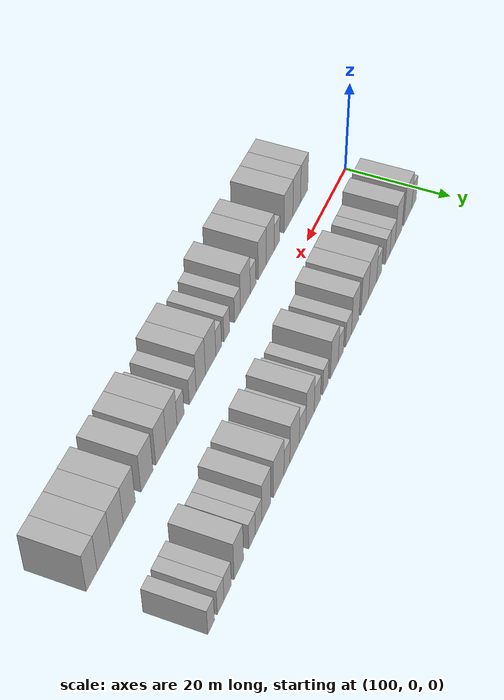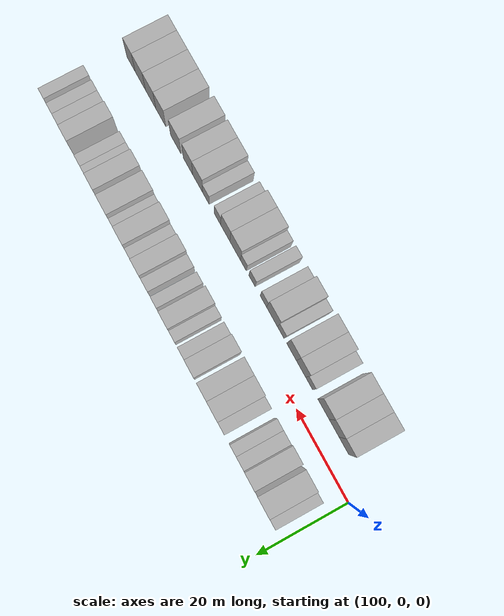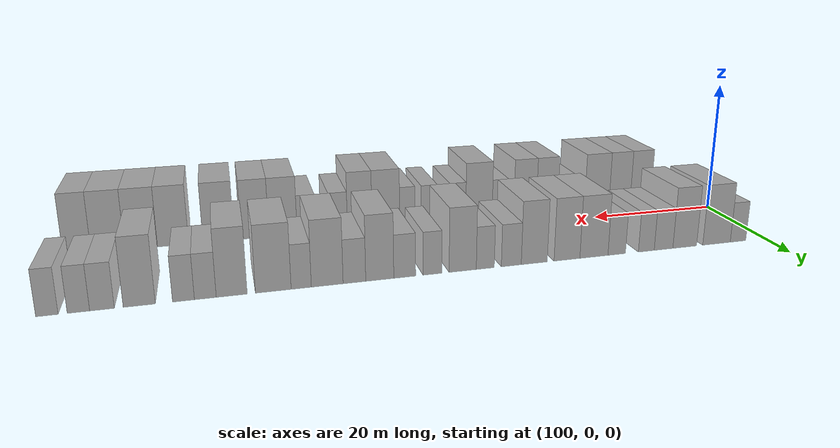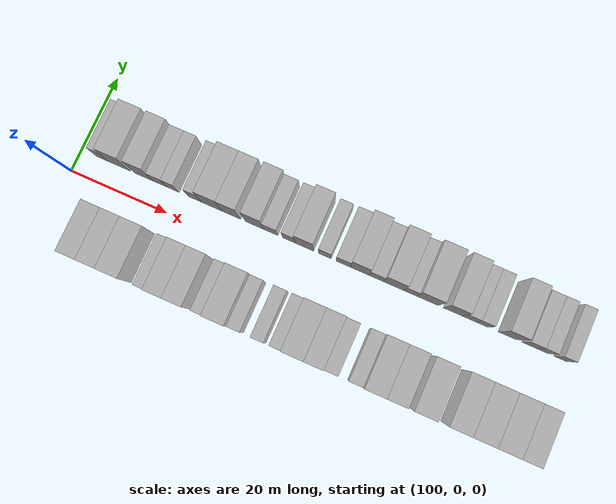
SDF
<sdf version="1.6">
 <world name="default">
  <model name="building_23">
   <static>1</static>
   <pose>104.5063 9.5000 0 0.000000 0.000000 1.570796</pose>
   <link name="link">
    <pose>0 0 3.00 0 0 0</pose>
    <collision name="collision"><geometry><box><size>10.0000 2.5752 6.0000</size></box></geometry></collision>
    <visual name="visual">
     <cast_shadows>0</cast_shadows>
     <geometry><box><size>10.0000 2.5752 6.0000</size></box></geometry>
     <material>
      <script>
       <uri>model://HANNAS_wall/materials/scripts</uri>
       <uri>model://HANNAS_wall/materials/textures</uri>
       <name>vrc/HANNAS_wall</name>
      </script>
     </material>
    </visual>
   </link>
  </model>
  <model name="building_24">
   <static>1</static>
   <pose>108.0437 9.5000 0 0.000000 0.000000 1.570796</pose>
   <link name="link">
    <pose>0 0 4.50 0 0 0</pose>
    <collision name="collision"><geometry><box><size>10.0000 4.4995 9.0000</size></box></geometry></collision>
    <visual name="visual">
     <cast_shadows>0</cast_shadows>
     <geometry><box><size>10.0000 4.4995 9.0000</size></box></geometry>
     <material>
      <script>
       <uri>model://HANNAS_wall/materials/scripts</uri>
       <uri>model://HANNAS_wall/materials/textures</uri>
       <name>vrc/HANNAS_wall</name>
      </script>
     </material>
    </visual>
   </link>
  </model>
  <model name="building_25">
   <static>1</static>
   <pose>113.1949 9.5000 0 0.000000 0.000000 1.570796</pose>
   <link name="link">
    <pose>0 0 4.50 0 0 0</pose>
    <collision name="collision"><geometry><box><size>10.0000 3.8029 9.0000</size></box></geometry></collision>
    <visual name="visual">
     <cast_shadows>0</cast_shadows>
     <geometry><box><size>10.0000 3.8029 9.0000</size></box></geometry>
     <material>
      <script>
       <uri>model://HANNAS_wall/materials/scripts</uri>
       <uri>model://HANNAS_wall/materials/textures</uri>
       <name>vrc/HANNAS_wall</name>
      </script>
     </material>
    </visual>
   </link>
  </model>
  <model name="building_26">
   <static>1</static>
   <pose>116.5691 9.5000 0 0.000000 0.000000 1.570796</pose>
   <link name="link">
    <pose>0 0 3.00 0 0 0</pose>
    <collision name="collision"><geometry><box><size>10.0000 2.9457 6.0000</size></box></geometry></collision>
    <visual name="visual">
     <cast_shadows>0</cast_shadows>
     <geometry><box><size>10.0000 2.9457 6.0000</size></box></geometry>
     <material>
      <script>
       <uri>model://HANNAS_wall/materials/scripts</uri>
       <uri>model://HANNAS_wall/materials/textures</uri>
       <name>vrc/HANNAS_wall</name>
      </script>
     </material>
    </visual>
   </link>
  </model>
  <model name="building_27">
   <static>1</static>
   <pose>119.2796 9.5000 0 0.000000 0.000000 1.570796</pose>
   <link name="link">
    <pose>0 0 3.00 0 0 0</pose>
    <collision name="collision"><geometry><box><size>10.0000 2.4752 6.0000</size></box></geometry></collision>
    <visual name="visual">
     <cast_shadows>0</cast_shadows>
     <geometry><box><size>10.0000 2.4752 6.0000</size></box></geometry>
     <material>
      <script>
       <uri>model://HANNAS_wall/materials/scripts</uri>
       <uri>model://HANNAS_wall/materials/textures</uri>
       <name>vrc/HANNAS_wall</name>
      </script>
     </material>
    </visual>
   </link>
  </model>
  <model name="building_28">
   <static>1</static>
   <pose>123.8556 9.5000 0 0.000000 0.000000 1.570796</pose>
   <link name="link">
    <pose>0 0 3.00 0 0 0</pose>
    <collision name="collision"><geometry><box><size>10.0000 2.6768 6.0000</size></box></geometry></collision>
    <visual name="visual">
     <cast_shadows>0</cast_shadows>
     <geometry><box><size>10.0000 2.6768 6.0000</size></box></geometry>
     <material>
      <script>
       <uri>model://HANNAS_wall/materials/scripts</uri>
       <uri>model://HANNAS_wall/materials/textures</uri>
       <name>vrc/HANNAS_wall</name>
      </script>
     </material>
    </visual>
   </link>
  </model>
  <model name="building_29">
   <static>1</static>
   <pose>127.3138 9.5000 0 0.000000 0.000000 1.570796</pose>
   <link name="link">
    <pose>0 0 4.50 0 0 0</pose>
    <collision name="collision"><geometry><box><size>10.0000 4.2395 9.0000</size></box></geometry></collision>
    <visual name="visual">
     <cast_shadows>0</cast_shadows>
     <geometry><box><size>10.0000 4.2395 9.0000</size></box></geometry>
     <material>
      <script>
       <uri>model://HANNAS_wall/materials/scripts</uri>
       <uri>model://HANNAS_wall/materials/textures</uri>
       <name>vrc/HANNAS_wall</name>
      </script>
     </material>
    </visual>
   </link>
  </model>
  <model name="building_30">
   <static>1</static>
   <pose>131.3502 9.5000 0 0.000000 0.000000 1.570796</pose>
   <link name="link">
    <pose>0 0 4.50 0 0 0</pose>
    <collision name="collision"><geometry><box><size>10.0000 3.8334 9.0000</size></box></geometry></collision>
    <visual name="visual">
     <cast_shadows>0</cast_shadows>
     <geometry><box><size>10.0000 3.8334 9.0000</size></box></geometry>
     <material>
      <script>
       <uri>model://HANNAS_wall/materials/scripts</uri>
       <uri>model://HANNAS_wall/materials/textures</uri>
       <name>vrc/HANNAS_wall</name>
      </script>
     </material>
    </visual>
   </link>
  </model>
  <model name="building_31">
   <static>1</static>
   <pose>136.1513 9.5000 0 0.000000 0.000000 1.570796</pose>
   <link name="link">
    <pose>0 0 4.50 0 0 0</pose>
    <collision name="collision"><geometry><box><size>10.0000 3.7687 9.0000</size></box></geometry></collision>
    <visual name="visual">
     <cast_shadows>0</cast_shadows>
     <geometry><box><size>10.0000 3.7687 9.0000</size></box></geometry>
     <material>
      <script>
       <uri>model://HANNAS_wall/materials/scripts</uri>
       <uri>model://HANNAS_wall/materials/textures</uri>
       <name>vrc/HANNAS_wall</name>
      </script>
     </material>
    </visual>
   </link>
  </model>
  <model name="building_32">
   <static>1</static>
   <pose>139.4616 9.5000 0 0.000000 0.000000 1.570796</pose>
   <link name="link">
    <pose>0 0 3.00 0 0 0</pose>
    <collision name="collision"><geometry><box><size>10.0000 2.8519 6.0000</size></box></geometry></collision>
    <visual name="visual">
     <cast_shadows>0</cast_shadows>
     <geometry><box><size>10.0000 2.8519 6.0000</size></box></geometry>
     <material>
      <script>
       <uri>model://HANNAS_wall/materials/scripts</uri>
       <uri>model://HANNAS_wall/materials/textures</uri>
       <name>vrc/HANNAS_wall</name>
      </script>
     </material>
    </visual>
   </link>
  </model>
  <model name="building_33">
   <static>1</static>
   <pose>143.1523 9.5000 0 0.000000 0.000000 1.570796</pose>
   <link name="link">
    <pose>0 0 3.00 0 0 0</pose>
    <collision name="collision"><geometry><box><size>10.0000 2.5296 6.0000</size></box></geometry></collision>
    <visual name="visual">
     <cast_shadows>0</cast_shadows>
     <geometry><box><size>10.0000 2.5296 6.0000</size></box></geometry>
     <material>
      <script>
       <uri>model://HANNAS_wall/materials/scripts</uri>
       <uri>model://HANNAS_wall/materials/textures</uri>
       <name>vrc/HANNAS_wall</name>
      </script>
     </material>
    </visual>
   </link>
  </model>
  <model name="building_34">
   <static>1</static>
   <pose>146.3034 9.5000 0 0.000000 0.000000 1.570796</pose>
   <link name="link">
    <pose>0 0 4.50 0 0 0</pose>
    <collision name="collision"><geometry><box><size>10.0000 3.7726 9.0000</size></box></geometry></collision>
    <visual name="visual">
     <cast_shadows>0</cast_shadows>
     <geometry><box><size>10.0000 3.7726 9.0000</size></box></geometry>
     <material>
      <script>
       <uri>model://HANNAS_wall/materials/scripts</uri>
       <uri>model://HANNAS_wall/materials/textures</uri>
       <name>vrc/HANNAS_wall</name>
      </script>
     </material>
    </visual>
   </link>
  </model>
  <model name="building_35">
   <static>1</static>
   <pose>150.4676 9.5000 0 0.000000 0.000000 1.570796</pose>
   <link name="link">
    <pose>0 0 3.00 0 0 0</pose>
    <collision name="collision"><geometry><box><size>10.0000 2.5558 6.0000</size></box></geometry></collision>
    <visual name="visual">
     <cast_shadows>0</cast_shadows>
     <geometry><box><size>10.0000 2.5558 6.0000</size></box></geometry>
     <material>
      <script>
       <uri>model://HANNAS_wall/materials/scripts</uri>
       <uri>model://HANNAS_wall/materials/textures</uri>
       <name>vrc/HANNAS_wall</name>
      </script>
     </material>
    </visual>
   </link>
  </model>
  <model name="building_36">
   <static>1</static>
   <pose>154.2089 9.5000 0 0.000000 0.000000 1.570796</pose>
   <link name="link">
    <pose>0 0 3.00 0 0 0</pose>
    <collision name="collision"><geometry><box><size>10.0000 2.9268 6.0000</size></box></geometry></collision>
    <visual name="visual">
     <cast_shadows>0</cast_shadows>
     <geometry><box><size>10.0000 2.9268 6.0000</size></box></geometry>
     <material>
      <script>
       <uri>model://HANNAS_wall/materials/scripts</uri>
       <uri>model://HANNAS_wall/materials/textures</uri>
       <name>vrc/HANNAS_wall</name>
      </script>
     </material>
    </visual>
   </link>
  </model>
  <model name="building_37">
   <static>1</static>
   <pose>157.5203 9.5000 0 0.000000 0.000000 1.570796</pose>
   <link name="link">
    <pose>0 0 4.50 0 0 0</pose>
    <collision name="collision"><geometry><box><size>10.0000 3.6960 9.0000</size></box></geometry></collision>
    <visual name="visual">
     <cast_shadows>0</cast_shadows>
     <geometry><box><size>10.0000 3.6960 9.0000</size></box></geometry>
     <material>
      <script>
       <uri>model://HANNAS_wall/materials/scripts</uri>
       <uri>model://HANNAS_wall/materials/textures</uri>
       <name>vrc/HANNAS_wall</name>
      </script>
     </material>
    </visual>
   </link>
  </model>
  <model name="building_38">
   <static>1</static>
   <pose>160.8346 9.5000 0 0.000000 0.000000 1.570796</pose>
   <link name="link">
    <pose>0 0 3.00 0 0 0</pose>
    <collision name="collision"><geometry><box><size>10.0000 2.9327 6.0000</size></box></geometry></collision>
    <visual name="visual">
     <cast_shadows>0</cast_shadows>
     <geometry><box><size>10.0000 2.9327 6.0000</size></box></geometry>
     <material>
      <script>
       <uri>model://HANNAS_wall/materials/scripts</uri>
       <uri>model://HANNAS_wall/materials/textures</uri>
       <name>vrc/HANNAS_wall</name>
      </script>
     </material>
    </visual>
   </link>
  </model>
  <model name="building_39">
   <static>1</static>
   <pose>164.3289 9.5000 0 0.000000 0.000000 1.570796</pose>
   <link name="link">
    <pose>0 0 4.50 0 0 0</pose>
    <collision name="collision"><geometry><box><size>10.0000 4.0558 9.0000</size></box></geometry></collision>
    <visual name="visual">
     <cast_shadows>0</cast_shadows>
     <geometry><box><size>10.0000 4.0558 9.0000</size></box></geometry>
     <material>
      <script>
       <uri>model://HANNAS_wall/materials/scripts</uri>
       <uri>model://HANNAS_wall/materials/textures</uri>
       <name>vrc/HANNAS_wall</name>
      </script>
     </material>
    </visual>
   </link>
  </model>
  <model name="building_40">
   <static>1</static>
   <pose>167.6247 9.5000 0 0.000000 0.000000 1.570796</pose>
   <link name="link">
    <pose>0 0 3.00 0 0 0</pose>
    <collision name="collision"><geometry><box><size>10.0000 2.5358 6.0000</size></box></geometry></collision>
    <visual name="visual">
     <cast_shadows>0</cast_shadows>
     <geometry><box><size>10.0000 2.5358 6.0000</size></box></geometry>
     <material>
      <script>
       <uri>model://HANNAS_wall/materials/scripts</uri>
       <uri>model://HANNAS_wall/materials/textures</uri>
       <name>vrc/HANNAS_wall</name>
      </script>
     </material>
    </visual>
   </link>
  </model>
  <model name="building_41">
   <static>1</static>
   <pose>171.1005 9.5000 0 0.000000 0.000000 1.570796</pose>
   <link name="link">
    <pose>0 0 4.50 0 0 0</pose>
    <collision name="collision"><geometry><box><size>10.0000 4.4159 9.0000</size></box></geometry></collision>
    <visual name="visual">
     <cast_shadows>0</cast_shadows>
     <geometry><box><size>10.0000 4.4159 9.0000</size></box></geometry>
     <material>
      <script>
       <uri>model://HANNAS_wall/materials/scripts</uri>
       <uri>model://HANNAS_wall/materials/textures</uri>
       <name>vrc/HANNAS_wall</name>
      </script>
     </material>
    </visual>
   </link>
  </model>
  <model name="building_42">
   <static>1</static>
   <pose>176.1763 9.5000 0 0.000000 0.000000 1.570796</pose>
   <link name="link">
    <pose>0 0 4.50 0 0 0</pose>
    <collision name="collision"><geometry><box><size>10.0000 3.7356 9.0000</size></box></geometry></collision>
    <visual name="visual">
     <cast_shadows>0</cast_shadows>
     <geometry><box><size>10.0000 3.7356 9.0000</size></box></geometry>
     <material>
      <script>
       <uri>model://HANNAS_wall/materials/scripts</uri>
       <uri>model://HANNAS_wall/materials/textures</uri>
       <name>vrc/HANNAS_wall</name>
      </script>
     </material>
    </visual>
   </link>
  </model>
  <model name="building_43">
   <static>1</static>
   <pose>179.3407 9.5000 0 0.000000 0.000000 1.570796</pose>
   <link name="link">
    <pose>0 0 3.00 0 0 0</pose>
    <collision name="collision"><geometry><box><size>10.0000 2.5933 6.0000</size></box></geometry></collision>
    <visual name="visual">
     <cast_shadows>0</cast_shadows>
     <geometry><box><size>10.0000 2.5933 6.0000</size></box></geometry>
     <material>
      <script>
       <uri>model://HANNAS_wall/materials/scripts</uri>
       <uri>model://HANNAS_wall/materials/textures</uri>
       <name>vrc/HANNAS_wall</name>
      </script>
     </material>
    </visual>
   </link>
  </model>
  <model name="building_44">
   <static>1</static>
   <pose>181.9197 9.5000 0 0.000000 0.000000 1.570796</pose>
   <link name="link">
    <pose>0 0 3.00 0 0 0</pose>
    <collision name="collision"><geometry><box><size>10.0000 2.5648 6.0000</size></box></geometry></collision>
    <visual name="visual">
     <cast_shadows>0</cast_shadows>
     <geometry><box><size>10.0000 2.5648 6.0000</size></box></geometry>
     <material>
      <script>
       <uri>model://HANNAS_wall/materials/scripts</uri>
       <uri>model://HANNAS_wall/materials/textures</uri>
       <name>vrc/HANNAS_wall</name>
      </script>
     </material>
    </visual>
   </link>
  </model>
  <model name="building_45">
   <static>1</static>
   <pose>187.0384 9.5000 0 0.000000 0.000000 1.570796</pose>
   <link name="link">
    <pose>0 0 4.50 0 0 0</pose>
    <collision name="collision"><geometry><box><size>10.0000 3.6726 9.0000</size></box></geometry></collision>
    <visual name="visual">
     <cast_shadows>0</cast_shadows>
     <geometry><box><size>10.0000 3.6726 9.0000</size></box></geometry>
     <material>
      <script>
       <uri>model://HANNAS_wall/materials/scripts</uri>
       <uri>model://HANNAS_wall/materials/textures</uri>
       <name>vrc/HANNAS_wall</name>
      </script>
     </material>
    </visual>
   </link>
  </model>
  <model name="building_46">
   <static>1</static>
   <pose>191.2557 9.5000 0 0.000000 0.000000 1.570796</pose>
   <link name="link">
    <pose>0 0 3.00 0 0 0</pose>
    <collision name="collision"><geometry><box><size>10.0000 2.7620 6.0000</size></box></geometry></collision>
    <visual name="visual">
     <cast_shadows>0</cast_shadows>
     <geometry><box><size>10.0000 2.7620 6.0000</size></box></geometry>
     <material>
      <script>
       <uri>model://HANNAS_wall/materials/scripts</uri>
       <uri>model://HANNAS_wall/materials/textures</uri>
       <name>vrc/HANNAS_wall</name>
      </script>
     </material>
    </visual>
   </link>
  </model>
  <model name="building_47">
   <static>1</static>
   <pose>193.8755 9.5000 0 0.000000 0.000000 1.570796</pose>
   <link name="link">
    <pose>0 0 3.00 0 0 0</pose>
    <collision name="collision"><geometry><box><size>10.0000 2.4777 6.0000</size></box></geometry></collision>
    <visual name="visual">
     <cast_shadows>0</cast_shadows>
     <geometry><box><size>10.0000 2.4777 6.0000</size></box></geometry>
     <material>
      <script>
       <uri>model://HANNAS_wall/materials/scripts</uri>
       <uri>model://HANNAS_wall/materials/textures</uri>
       <name>vrc/HANNAS_wall</name>
      </script>
     </material>
    </visual>
   </link>
  </model>
  <model name="building_48">
   <static>1</static>
   <pose>197.3317 9.5000 0 0.000000 0.000000 1.570796</pose>
   <link name="link">
    <pose>0 0 3.00 0 0 0</pose>
    <collision name="collision"><geometry><box><size>10.0000 2.4348 6.0000</size></box></geometry></collision>
    <visual name="visual">
     <cast_shadows>0</cast_shadows>
     <geometry><box><size>10.0000 2.4348 6.0000</size></box></geometry>
     <material>
      <script>
       <uri>model://HANNAS_wall/materials/scripts</uri>
       <uri>model://HANNAS_wall/materials/textures</uri>
       <name>vrc/HANNAS_wall</name>
      </script>
     </material>
    </visual>
   </link>
  </model>
  <model name="building_75">
   <static>1</static>
   <pose>109.6471 -9.5000 0 0.000000 0.000000 1.570796</pose>
   <link name="link">
    <pose>0 0 4.50 0 0 0</pose>
    <collision name="collision"><geometry><box><size>10.0000 3.7666 9.0000</size></box></geometry></collision>
    <visual name="visual">
     <cast_shadows>0</cast_shadows>
     <geometry><box><size>10.0000 3.7666 9.0000</size></box></geometry>
     <material>
      <script>
       <uri>model://HANNAS_wall/materials/scripts</uri>
       <uri>model://HANNAS_wall/materials/textures</uri>
       <name>vrc/HANNAS_wall</name>
      </script>
     </material>
    </visual>
   </link>
  </model>
  <model name="building_76">
   <static>1</static>
   <pose>113.4368 -9.5000 0 0.000000 0.000000 1.570796</pose>
   <link name="link">
    <pose>0 0 4.50 0 0 0</pose>
    <collision name="collision"><geometry><box><size>10.0000 3.8127 9.0000</size></box></geometry></collision>
    <visual name="visual">
     <cast_shadows>0</cast_shadows>
     <geometry><box><size>10.0000 3.8127 9.0000</size></box></geometry>
     <material>
      <script>
       <uri>model://HANNAS_wall/materials/scripts</uri>
       <uri>model://HANNAS_wall/materials/textures</uri>
       <name>vrc/HANNAS_wall</name>
      </script>
     </material>
    </visual>
   </link>
  </model>
  <model name="building_77">
   <static>1</static>
   <pose>117.5224 -9.5000 0 0.000000 0.000000 1.570796</pose>
   <link name="link">
    <pose>0 0 4.50 0 0 0</pose>
    <collision name="collision"><geometry><box><size>10.0000 4.3585 9.0000</size></box></geometry></collision>
    <visual name="visual">
     <cast_shadows>0</cast_shadows>
     <geometry><box><size>10.0000 4.3585 9.0000</size></box></geometry>
     <material>
      <script>
       <uri>model://HANNAS_wall/materials/scripts</uri>
       <uri>model://HANNAS_wall/materials/textures</uri>
       <name>vrc/HANNAS_wall</name>
      </script>
     </material>
    </visual>
   </link>
  </model>
  <model name="building_78">
   <static>1</static>
   <pose>123.0626 -9.5000 0 0.000000 0.000000 1.570796</pose>
   <link name="link">
    <pose>0 0 3.00 0 0 0</pose>
    <collision name="collision"><geometry><box><size>10.0000 2.7220 6.0000</size></box></geometry></collision>
    <visual name="visual">
     <cast_shadows>0</cast_shadows>
     <geometry><box><size>10.0000 2.7220 6.0000</size></box></geometry>
     <material>
      <script>
       <uri>model://HANNAS_wall/materials/scripts</uri>
       <uri>model://HANNAS_wall/materials/textures</uri>
       <name>vrc/HANNAS_wall</name>
      </script>
     </material>
    </visual>
   </link>
  </model>
  <model name="building_79">
   <static>1</static>
   <pose>126.2552 -9.5000 0 0.000000 0.000000 1.570796</pose>
   <link name="link">
    <pose>0 0 4.50 0 0 0</pose>
    <collision name="collision"><geometry><box><size>10.0000 3.6632 9.0000</size></box></geometry></collision>
    <visual name="visual">
     <cast_shadows>0</cast_shadows>
     <geometry><box><size>10.0000 3.6632 9.0000</size></box></geometry>
     <material>
      <script>
       <uri>model://HANNAS_wall/materials/scripts</uri>
       <uri>model://HANNAS_wall/materials/textures</uri>
       <name>vrc/HANNAS_wall</name>
      </script>
     </material>
    </visual>
   </link>
  </model>
  <model name="building_80">
   <static>1</static>
   <pose>130.0028 -9.5000 0 0.000000 0.000000 1.570796</pose>
   <link name="link">
    <pose>0 0 4.50 0 0 0</pose>
    <collision name="collision"><geometry><box><size>10.0000 3.8321 9.0000</size></box></geometry></collision>
    <visual name="visual">
     <cast_shadows>0</cast_shadows>
     <geometry><box><size>10.0000 3.8321 9.0000</size></box></geometry>
     <material>
      <script>
       <uri>model://HANNAS_wall/materials/scripts</uri>
       <uri>model://HANNAS_wall/materials/textures</uri>
       <name>vrc/HANNAS_wall</name>
      </script>
     </material>
    </visual>
   </link>
  </model>
  <model name="building_81">
   <static>1</static>
   <pose>134.2269 -9.5000 0 0.000000 0.000000 1.570796</pose>
   <link name="link">
    <pose>0 0 3.00 0 0 0</pose>
    <collision name="collision"><geometry><box><size>10.0000 2.6162 6.0000</size></box></geometry></collision>
    <visual name="visual">
     <cast_shadows>0</cast_shadows>
     <geometry><box><size>10.0000 2.6162 6.0000</size></box></geometry>
     <material>
      <script>
       <uri>model://HANNAS_wall/materials/scripts</uri>
       <uri>model://HANNAS_wall/materials/textures</uri>
       <name>vrc/HANNAS_wall</name>
      </script>
     </material>
    </visual>
   </link>
  </model>
  <model name="building_82">
   <static>1</static>
   <pose>137.7190 -9.5000 0 0.000000 0.000000 1.570796</pose>
   <link name="link">
    <pose>0 0 4.50 0 0 0</pose>
    <collision name="collision"><geometry><box><size>10.0000 4.3679 9.0000</size></box></geometry></collision>
    <visual name="visual">
     <cast_shadows>0</cast_shadows>
     <geometry><box><size>10.0000 4.3679 9.0000</size></box></geometry>
     <material>
      <script>
       <uri>model://HANNAS_wall/materials/scripts</uri>
       <uri>model://HANNAS_wall/materials/textures</uri>
       <name>vrc/HANNAS_wall</name>
      </script>
     </material>
    </visual>
   </link>
  </model>
  <model name="building_83">
   <static>1</static>
   <pose>141.2161 -9.5000 0 0.000000 0.000000 1.570796</pose>
   <link name="link">
    <pose>0 0 3.00 0 0 0</pose>
    <collision name="collision"><geometry><box><size>10.0000 2.6262 6.0000</size></box></geometry></collision>
    <visual name="visual">
     <cast_shadows>0</cast_shadows>
     <geometry><box><size>10.0000 2.6262 6.0000</size></box></geometry>
     <material>
      <script>
       <uri>model://HANNAS_wall/materials/scripts</uri>
       <uri>model://HANNAS_wall/materials/textures</uri>
       <name>vrc/HANNAS_wall</name>
      </script>
     </material>
    </visual>
   </link>
  </model>
  <model name="building_84">
   <static>1</static>
   <pose>145.8126 -9.5000 0 0.000000 0.000000 1.570796</pose>
   <link name="link">
    <pose>0 0 3.00 0 0 0</pose>
    <collision name="collision"><geometry><box><size>10.0000 2.5668 6.0000</size></box></geometry></collision>
    <visual name="visual">
     <cast_shadows>0</cast_shadows>
     <geometry><box><size>10.0000 2.5668 6.0000</size></box></geometry>
     <material>
      <script>
       <uri>model://HANNAS_wall/materials/scripts</uri>
       <uri>model://HANNAS_wall/materials/textures</uri>
       <name>vrc/HANNAS_wall</name>
      </script>
     </material>
    </visual>
   </link>
  </model>
  <model name="building_85">
   <static>1</static>
   <pose>149.3014 -9.5000 0 0.000000 0.000000 1.570796</pose>
   <link name="link">
    <pose>0 0 3.00 0 0 0</pose>
    <collision name="collision"><geometry><box><size>10.0000 2.4108 6.0000</size></box></geometry></collision>
    <visual name="visual">
     <cast_shadows>0</cast_shadows>
     <geometry><box><size>10.0000 2.4108 6.0000</size></box></geometry>
     <material>
      <script>
       <uri>model://HANNAS_wall/materials/scripts</uri>
       <uri>model://HANNAS_wall/materials/textures</uri>
       <name>vrc/HANNAS_wall</name>
      </script>
     </material>
    </visual>
   </link>
  </model>
  <model name="building_86">
   <static>1</static>
   <pose>152.6638 -9.5000 0 0.000000 0.000000 1.570796</pose>
   <link name="link">
    <pose>0 0 4.50 0 0 0</pose>
    <collision name="collision"><geometry><box><size>10.0000 4.3141 9.0000</size></box></geometry></collision>
    <visual name="visual">
     <cast_shadows>0</cast_shadows>
     <geometry><box><size>10.0000 4.3141 9.0000</size></box></geometry>
     <material>
      <script>
       <uri>model://HANNAS_wall/materials/scripts</uri>
       <uri>model://HANNAS_wall/materials/textures</uri>
       <name>vrc/HANNAS_wall</name>
      </script>
     </material>
    </visual>
   </link>
  </model>
  <model name="building_87">
   <static>1</static>
   <pose>156.7011 -9.5000 0 0.000000 0.000000 1.570796</pose>
   <link name="link">
    <pose>0 0 4.50 0 0 0</pose>
    <collision name="collision"><geometry><box><size>10.0000 3.7606 9.0000</size></box></geometry></collision>
    <visual name="visual">
     <cast_shadows>0</cast_shadows>
     <geometry><box><size>10.0000 3.7606 9.0000</size></box></geometry>
     <material>
      <script>
       <uri>model://HANNAS_wall/materials/scripts</uri>
       <uri>model://HANNAS_wall/materials/textures</uri>
       <name>vrc/HANNAS_wall</name>
      </script>
     </material>
    </visual>
   </link>
  </model>
  <model name="building_88">
   <static>1</static>
   <pose>159.9754 -9.5000 0 0.000000 0.000000 1.570796</pose>
   <link name="link">
    <pose>0 0 3.00 0 0 0</pose>
    <collision name="collision"><geometry><box><size>10.0000 2.7879 6.0000</size></box></geometry></collision>
    <visual name="visual">
     <cast_shadows>0</cast_shadows>
     <geometry><box><size>10.0000 2.7879 6.0000</size></box></geometry>
     <material>
      <script>
       <uri>model://HANNAS_wall/materials/scripts</uri>
       <uri>model://HANNAS_wall/materials/textures</uri>
       <name>vrc/HANNAS_wall</name>
      </script>
     </material>
    </visual>
   </link>
  </model>
  <model name="building_89">
   <static>1</static>
   <pose>164.7460 -9.5000 0 0.000000 0.000000 1.570796</pose>
   <link name="link">
    <pose>0 0 3.00 0 0 0</pose>
    <collision name="collision"><geometry><box><size>10.0000 2.7534 6.0000</size></box></geometry></collision>
    <visual name="visual">
     <cast_shadows>0</cast_shadows>
     <geometry><box><size>10.0000 2.7534 6.0000</size></box></geometry>
     <material>
      <script>
       <uri>model://HANNAS_wall/materials/scripts</uri>
       <uri>model://HANNAS_wall/materials/textures</uri>
       <name>vrc/HANNAS_wall</name>
      </script>
     </material>
    </visual>
   </link>
  </model>
  <model name="building_90">
   <static>1</static>
   <pose>168.1962 -9.5000 0 0.000000 0.000000 1.570796</pose>
   <link name="link">
    <pose>0 0 4.50 0 0 0</pose>
    <collision name="collision"><geometry><box><size>10.0000 4.1468 9.0000</size></box></geometry></collision>
    <visual name="visual">
     <cast_shadows>0</cast_shadows>
     <geometry><box><size>10.0000 4.1468 9.0000</size></box></geometry>
     <material>
      <script>
       <uri>model://HANNAS_wall/materials/scripts</uri>
       <uri>model://HANNAS_wall/materials/textures</uri>
       <name>vrc/HANNAS_wall</name>
      </script>
     </material>
    </visual>
   </link>
  </model>
  <model name="building_91">
   <static>1</static>
   <pose>172.2619 -9.5000 0 0.000000 0.000000 1.570796</pose>
   <link name="link">
    <pose>0 0 4.50 0 0 0</pose>
    <collision name="collision"><geometry><box><size>10.0000 3.9847 9.0000</size></box></geometry></collision>
    <visual name="visual">
     <cast_shadows>0</cast_shadows>
     <geometry><box><size>10.0000 3.9847 9.0000</size></box></geometry>
     <material>
      <script>
       <uri>model://HANNAS_wall/materials/scripts</uri>
       <uri>model://HANNAS_wall/materials/textures</uri>
       <name>vrc/HANNAS_wall</name>
      </script>
     </material>
    </visual>
   </link>
  </model>
  <model name="building_92">
   <static>1</static>
   <pose>177.4526 -9.5000 0 0.000000 0.000000 1.570796</pose>
   <link name="link">
    <pose>0 0 4.50 0 0 0</pose>
    <collision name="collision"><geometry><box><size>10.0000 4.3967 9.0000</size></box></geometry></collision>
    <visual name="visual">
     <cast_shadows>0</cast_shadows>
     <geometry><box><size>10.0000 4.3967 9.0000</size></box></geometry>
     <material>
      <script>
       <uri>model://HANNAS_wall/materials/scripts</uri>
       <uri>model://HANNAS_wall/materials/textures</uri>
       <name>vrc/HANNAS_wall</name>
      </script>
     </material>
    </visual>
   </link>
  </model>
  <model name="building_93">
   <static>1</static>
   <pose>183.7919 -9.5000 0 0.000000 0.000000 1.570796</pose>
   <link name="link">
    <pose>0 0 4.50 0 0 0</pose>
    <collision name="collision"><geometry><box><size>10.0000 4.2818 9.0000</size></box></geometry></collision>
    <visual name="visual">
     <cast_shadows>0</cast_shadows>
     <geometry><box><size>10.0000 4.2818 9.0000</size></box></geometry>
     <material>
      <script>
       <uri>model://HANNAS_wall/materials/scripts</uri>
       <uri>model://HANNAS_wall/materials/textures</uri>
       <name>vrc/HANNAS_wall</name>
      </script>
     </material>
    </visual>
   </link>
  </model>
  <model name="building_94">
   <static>1</static>
   <pose>188.1525 -9.5000 0 0.000000 0.000000 1.570796</pose>
   <link name="link">
    <pose>0 0 4.50 0 0 0</pose>
    <collision name="collision"><geometry><box><size>10.0000 4.4395 9.0000</size></box></geometry></collision>
    <visual name="visual">
     <cast_shadows>0</cast_shadows>
     <geometry><box><size>10.0000 4.4395 9.0000</size></box></geometry>
     <material>
      <script>
       <uri>model://HANNAS_wall/materials/scripts</uri>
       <uri>model://HANNAS_wall/materials/textures</uri>
       <name>vrc/HANNAS_wall</name>
      </script>
     </material>
    </visual>
   </link>
  </model>
  <model name="building_95">
   <static>1</static>
   <pose>192.5944 -9.5000 0 0.000000 0.000000 1.570796</pose>
   <link name="link">
    <pose>0 0 4.50 0 0 0</pose>
    <collision name="collision"><geometry><box><size>10.0000 4.4442 9.0000</size></box></geometry></collision>
    <visual name="visual">
     <cast_shadows>0</cast_shadows>
     <geometry><box><size>10.0000 4.4442 9.0000</size></box></geometry>
     <material>
      <script>
       <uri>model://HANNAS_wall/materials/scripts</uri>
       <uri>model://HANNAS_wall/materials/textures</uri>
       <name>vrc/HANNAS_wall</name>
      </script>
     </material>
    </visual>
   </link>
  </model>
  <model name="building_96">
   <static>1</static>
   <pose>196.6420 -9.5000 0 0.000000 0.000000 1.570796</pose>
   <link name="link">
    <pose>0 0 4.50 0 0 0</pose>
    <collision name="collision"><geometry><box><size>10.0000 3.6511 9.0000</size></box></geometry></collision>
    <visual name="visual">
     <cast_shadows>0</cast_shadows>
     <geometry><box><size>10.0000 3.6511 9.0000</size></box></geometry>
     <material>
      <script>
       <uri>model://HANNAS_wall/materials/scripts</uri>
       <uri>model://HANNAS_wall/materials/textures</uri>
       <name>vrc/HANNAS_wall</name>
      </script>
     </material>
    </visual>
   </link>
  </model>
 </world>
</sdf>
